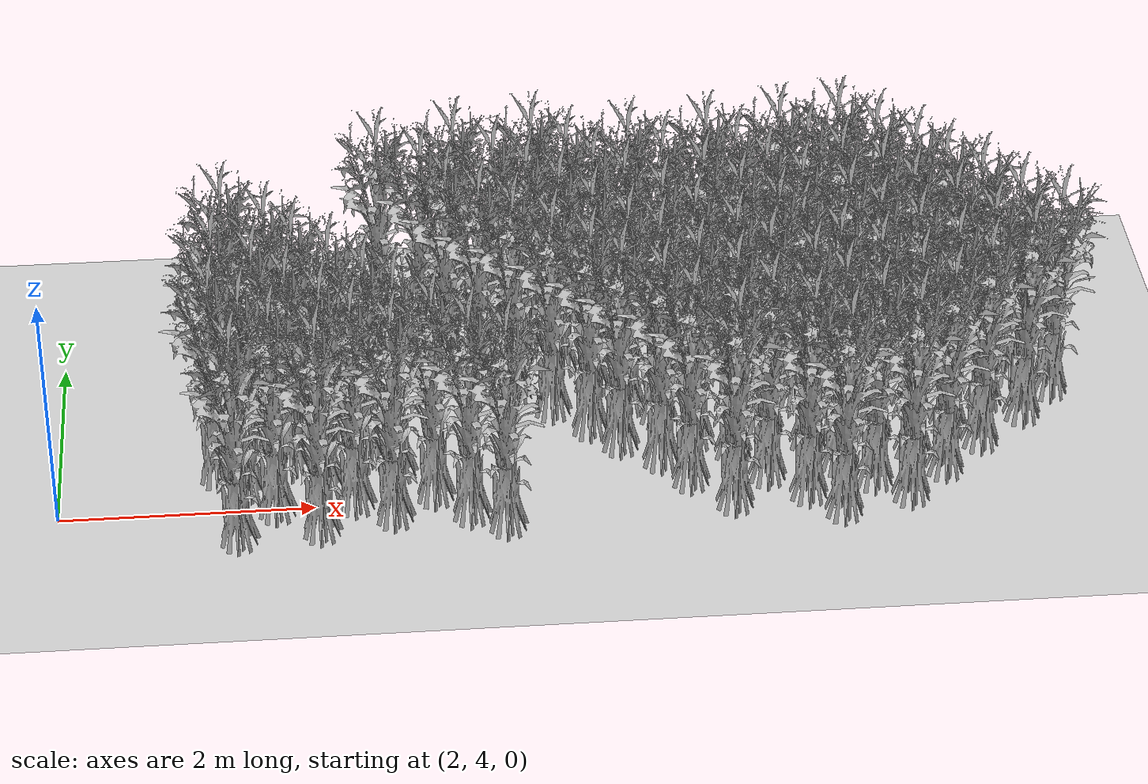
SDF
<sdf version="1.7">
 <world name="farmland_world">
  <model name="ground_plane">
   <static>1</static>
   <link name="link">
    <collision name="collision">
     <geometry><plane><normal>0 0 1</normal><size>40.0 40.0</size></plane></geometry>
     <surface><friction><ode><mu>100</mu><mu2>50</mu2></ode></friction></surface>
    </collision>
    <visual name="visual">
     <cast_shadows>0</cast_shadows>
     <geometry><plane><normal>0 0 1</normal><size>40.0 40.0</size></plane></geometry>
     <material>
      <script><uri>file://media/materials/scripts/gazebo.material</uri><name>Gazebo/Grey</name></script>
     </material>
    </visual>
   </link>
  </model>
  <model name="tree_2_50">
   <static>1</static>
   <link name="link">
    <collision name="collision">
     <geometry><mesh><uri>model://Corn/corn_5p.obj</uri><scale>1 1 1</scale></mesh></geometry>
     <surface><friction><ode><mu>100</mu><mu2>50</mu2></ode></friction></surface>
    </collision>
    <visual name="visual">
     <geometry><mesh><uri>model://Corn/corn_5p.obj</uri><scale>1 1 1</scale></mesh></geometry>
    </visual>
   </link>
   <pose>3.420444284650225 3.57358906782028 0 0 0 0</pose>
  </model>
  <model name="tree_2_86">
   <static>1</static>
   <link name="link">
    <collision name="collision">
     <geometry><mesh><uri>model://Corn/corn_5p.obj</uri><scale>1 1 1</scale></mesh></geometry>
     <surface><friction><ode><mu>100</mu><mu2>50</mu2></ode></friction></surface>
    </collision>
    <visual name="visual">
     <geometry><mesh><uri>model://Corn/corn_5p.obj</uri><scale>1 1 1</scale></mesh></geometry>
    </visual>
   </link>
   <pose>5.4896398008788445 3.5845369937580434 0 0 0 0</pose>
  </model>
  <model name="tree_2_87">
   <static>1</static>
   <link name="link">
    <collision name="collision">
     <geometry><mesh><uri>model://Corn/corn_5p.obj</uri><scale>1 1 1</scale></mesh></geometry>
     <surface><friction><ode><mu>100</mu><mu2>50</mu2></ode></friction></surface>
    </collision>
    <visual name="visual">
     <geometry><mesh><uri>model://Corn/corn_5p.obj</uri><scale>1 1 1</scale></mesh></geometry>
    </visual>
   </link>
   <pose>5.218135575923679 3.751085288662463 0 0 0 0</pose>
  </model>
  <model name="tree_2_88">
   <static>1</static>
   <link name="link">
    <collision name="collision">
     <geometry><mesh><uri>model://Corn/corn_5p.obj</uri><scale>1 1 1</scale></mesh></geometry>
     <surface><friction><ode><mu>100</mu><mu2>50</mu2></ode></friction></surface>
    </collision>
    <visual name="visual">
     <geometry><mesh><uri>model://Corn/corn_5p.obj</uri><scale>1 1 1</scale></mesh></geometry>
    </visual>
   </link>
   <pose>4.952018772519928 4.007155048597539 0 0 0 0</pose>
  </model>
  <model name="tree_2_89">
   <static>1</static>
   <link name="link">
    <collision name="collision">
     <geometry><mesh><uri>model://Corn/corn_5p.obj</uri><scale>1 1 1</scale></mesh></geometry>
     <surface><friction><ode><mu>100</mu><mu2>50</mu2></ode></friction></surface>
    </collision>
    <visual name="visual">
     <geometry><mesh><uri>model://Corn/corn_5p.obj</uri><scale>1 1 1</scale></mesh></geometry>
    </visual>
   </link>
   <pose>4.672133840282682 4.34394165432046 0 0 0 0</pose>
  </model>
  <model name="tree_2_90">
   <static>1</static>
   <link name="link">
    <collision name="collision">
     <geometry><mesh><uri>model://Corn/corn_5p.obj</uri><scale>1 1 1</scale></mesh></geometry>
     <surface><friction><ode><mu>100</mu><mu2>50</mu2></ode></friction></surface>
    </collision>
    <visual name="visual">
     <geometry><mesh><uri>model://Corn/corn_5p.obj</uri><scale>1 1 1</scale></mesh></geometry>
    </visual>
   </link>
   <pose>4.447115739398141 4.5255912613018205 0 0 0 0</pose>
  </model>
  <model name="tree_2_91">
   <static>1</static>
   <link name="link">
    <collision name="collision">
     <geometry><mesh><uri>model://Corn/corn_5p.obj</uri><scale>1 1 1</scale></mesh></geometry>
     <surface><friction><ode><mu>100</mu><mu2>50</mu2></ode></friction></surface>
    </collision>
    <visual name="visual">
     <geometry><mesh><uri>model://Corn/corn_5p.obj</uri><scale>1 1 1</scale></mesh></geometry>
    </visual>
   </link>
   <pose>4.186994604702957 4.819746124404386 0 0 0 0</pose>
  </model>
  <model name="tree_2_92">
   <static>1</static>
   <link name="link">
    <collision name="collision">
     <geometry><mesh><uri>model://Corn/corn_5p.obj</uri><scale>1 1 1</scale></mesh></geometry>
     <surface><friction><ode><mu>100</mu><mu2>50</mu2></ode></friction></surface>
    </collision>
    <visual name="visual">
     <geometry><mesh><uri>model://Corn/corn_5p.obj</uri><scale>1 1 1</scale></mesh></geometry>
    </visual>
   </link>
   <pose>3.9106659427075323 5.054535482924766 0 0 0 0</pose>
  </model>
  <model name="tree_2_93">
   <static>1</static>
   <link name="link">
    <collision name="collision">
     <geometry><mesh><uri>model://Corn/corn_5p.obj</uri><scale>1 1 1</scale></mesh></geometry>
     <surface><friction><ode><mu>100</mu><mu2>50</mu2></ode></friction></surface>
    </collision>
    <visual name="visual">
     <geometry><mesh><uri>model://Corn/corn_5p.obj</uri><scale>1 1 1</scale></mesh></geometry>
    </visual>
   </link>
   <pose>3.699629517159104 5.316806449366508 0 0 0 0</pose>
  </model>
  <model name="tree_2_94">
   <static>1</static>
   <link name="link">
    <collision name="collision">
     <geometry><mesh><uri>model://Corn/corn_5p.obj</uri><scale>1 1 1</scale></mesh></geometry>
     <surface><friction><ode><mu>100</mu><mu2>50</mu2></ode></friction></surface>
    </collision>
    <visual name="visual">
     <geometry><mesh><uri>model://Corn/corn_5p.obj</uri><scale>1 1 1</scale></mesh></geometry>
    </visual>
   </link>
   <pose>3.361128249426531 5.627001271178261 0 0 0 0</pose>
  </model>
  <model name="tree_2_123">
   <static>1</static>
   <link name="link">
    <collision name="collision">
     <geometry><mesh><uri>model://Corn/corn_5p.obj</uri><scale>1 1 1</scale></mesh></geometry>
     <surface><friction><ode><mu>100</mu><mu2>50</mu2></ode></friction></surface>
    </collision>
    <visual name="visual">
     <geometry><mesh><uri>model://Corn/corn_5p.obj</uri><scale>1 1 1</scale></mesh></geometry>
    </visual>
   </link>
   <pose>7.2709121314765985 3.72660483130917 0 0 0 0</pose>
  </model>
  <model name="tree_2_124">
   <static>1</static>
   <link name="link">
    <collision name="collision">
     <geometry><mesh><uri>model://Corn/corn_5p.obj</uri><scale>1 1 1</scale></mesh></geometry>
     <surface><friction><ode><mu>100</mu><mu2>50</mu2></ode></friction></surface>
    </collision>
    <visual name="visual">
     <geometry><mesh><uri>model://Corn/corn_5p.obj</uri><scale>1 1 1</scale></mesh></geometry>
    </visual>
   </link>
   <pose>6.957938753503712 4.039555844898377 0 0 0 0</pose>
  </model>
  <model name="tree_2_125">
   <static>1</static>
   <link name="link">
    <collision name="collision">
     <geometry><mesh><uri>model://Corn/corn_5p.obj</uri><scale>1 1 1</scale></mesh></geometry>
     <surface><friction><ode><mu>100</mu><mu2>50</mu2></ode></friction></surface>
    </collision>
    <visual name="visual">
     <geometry><mesh><uri>model://Corn/corn_5p.obj</uri><scale>1 1 1</scale></mesh></geometry>
    </visual>
   </link>
   <pose>6.753322616575584 4.316073762775237 0 0 0 0</pose>
  </model>
  <model name="tree_2_126">
   <static>1</static>
   <link name="link">
    <collision name="collision">
     <geometry><mesh><uri>model://Corn/corn_5p.obj</uri><scale>1 1 1</scale></mesh></geometry>
     <surface><friction><ode><mu>100</mu><mu2>50</mu2></ode></friction></surface>
    </collision>
    <visual name="visual">
     <geometry><mesh><uri>model://Corn/corn_5p.obj</uri><scale>1 1 1</scale></mesh></geometry>
    </visual>
   </link>
   <pose>6.450231007040186 4.551252220862419 0 0 0 0</pose>
  </model>
  <model name="tree_2_127">
   <static>1</static>
   <link name="link">
    <collision name="collision">
     <geometry><mesh><uri>model://Corn/corn_5p.obj</uri><scale>1 1 1</scale></mesh></geometry>
     <surface><friction><ode><mu>100</mu><mu2>50</mu2></ode></friction></surface>
    </collision>
    <visual name="visual">
     <geometry><mesh><uri>model://Corn/corn_5p.obj</uri><scale>1 1 1</scale></mesh></geometry>
    </visual>
   </link>
   <pose>6.231415448971569 4.7875504324229174 0 0 0 0</pose>
  </model>
  <model name="tree_2_128">
   <static>1</static>
   <link name="link">
    <collision name="collision">
     <geometry><mesh><uri>model://Corn/corn_5p.obj</uri><scale>1 1 1</scale></mesh></geometry>
     <surface><friction><ode><mu>100</mu><mu2>50</mu2></ode></friction></surface>
    </collision>
    <visual name="visual">
     <geometry><mesh><uri>model://Corn/corn_5p.obj</uri><scale>1 1 1</scale></mesh></geometry>
    </visual>
   </link>
   <pose>5.95136122695466 5.063842469284656 0 0 0 0</pose>
  </model>
  <model name="tree_2_129">
   <static>1</static>
   <link name="link">
    <collision name="collision">
     <geometry><mesh><uri>model://Corn/corn_5p.obj</uri><scale>1 1 1</scale></mesh></geometry>
     <surface><friction><ode><mu>100</mu><mu2>50</mu2></ode></friction></surface>
    </collision>
    <visual name="visual">
     <geometry><mesh><uri>model://Corn/corn_5p.obj</uri><scale>1 1 1</scale></mesh></geometry>
    </visual>
   </link>
   <pose>5.6586230795150785 5.319047655990866 0 0 0 0</pose>
  </model>
  <model name="tree_2_130">
   <static>1</static>
   <link name="link">
    <collision name="collision">
     <geometry><mesh><uri>model://Corn/corn_5p.obj</uri><scale>1 1 1</scale></mesh></geometry>
     <surface><friction><ode><mu>100</mu><mu2>50</mu2></ode></friction></surface>
    </collision>
    <visual name="visual">
     <geometry><mesh><uri>model://Corn/corn_5p.obj</uri><scale>1 1 1</scale></mesh></geometry>
    </visual>
   </link>
   <pose>5.402670767792569 5.519778649312421 0 0 0 0</pose>
  </model>
  <model name="tree_2_131">
   <static>1</static>
   <link name="link">
    <collision name="collision">
     <geometry><mesh><uri>model://Corn/corn_5p.obj</uri><scale>1 1 1</scale></mesh></geometry>
     <surface><friction><ode><mu>100</mu><mu2>50</mu2></ode></friction></surface>
    </collision>
    <visual name="visual">
     <geometry><mesh><uri>model://Corn/corn_5p.obj</uri><scale>1 1 1</scale></mesh></geometry>
    </visual>
   </link>
   <pose>5.152790353708562 5.783984192313626 0 0 0 0</pose>
  </model>
  <model name="tree_2_132">
   <static>1</static>
   <link name="link">
    <collision name="collision">
     <geometry><mesh><uri>model://Corn/corn_5p.obj</uri><scale>1 1 1</scale></mesh></geometry>
     <surface><friction><ode><mu>100</mu><mu2>50</mu2></ode></friction></surface>
    </collision>
    <visual name="visual">
     <geometry><mesh><uri>model://Corn/corn_5p.obj</uri><scale>1 1 1</scale></mesh></geometry>
    </visual>
   </link>
   <pose>4.966489439226466 6.08558600815118 0 0 0 0</pose>
  </model>
  <model name="tree_2_133">
   <static>1</static>
   <link name="link">
    <collision name="collision">
     <geometry><mesh><uri>model://Corn/corn_5p.obj</uri><scale>1 1 1</scale></mesh></geometry>
     <surface><friction><ode><mu>100</mu><mu2>50</mu2></ode></friction></surface>
    </collision>
    <visual name="visual">
     <geometry><mesh><uri>model://Corn/corn_5p.obj</uri><scale>1 1 1</scale></mesh></geometry>
    </visual>
   </link>
   <pose>4.622222130110102 6.330711594795093 0 0 0 0</pose>
  </model>
  <model name="tree_2_160">
   <static>1</static>
   <link name="link">
    <collision name="collision">
     <geometry><mesh><uri>model://Corn/corn_5p.obj</uri><scale>1 1 1</scale></mesh></geometry>
     <surface><friction><ode><mu>100</mu><mu2>50</mu2></ode></friction></surface>
    </collision>
    <visual name="visual">
     <geometry><mesh><uri>model://Corn/corn_5p.obj</uri><scale>1 1 1</scale></mesh></geometry>
    </visual>
   </link>
   <pose>8.971809798873332 4.0238394960927675 0 0 0 0</pose>
  </model>
  <model name="tree_2_161">
   <static>1</static>
   <link name="link">
    <collision name="collision">
     <geometry><mesh><uri>model://Corn/corn_5p.obj</uri><scale>1 1 1</scale></mesh></geometry>
     <surface><friction><ode><mu>100</mu><mu2>50</mu2></ode></friction></surface>
    </collision>
    <visual name="visual">
     <geometry><mesh><uri>model://Corn/corn_5p.obj</uri><scale>1 1 1</scale></mesh></geometry>
    </visual>
   </link>
   <pose>8.756607108072432 4.275760424871249 0 0 0 0</pose>
  </model>
  <model name="tree_2_162">
   <static>1</static>
   <link name="link">
    <collision name="collision">
     <geometry><mesh><uri>model://Corn/corn_5p.obj</uri><scale>1 1 1</scale></mesh></geometry>
     <surface><friction><ode><mu>100</mu><mu2>50</mu2></ode></friction></surface>
    </collision>
    <visual name="visual">
     <geometry><mesh><uri>model://Corn/corn_5p.obj</uri><scale>1 1 1</scale></mesh></geometry>
    </visual>
   </link>
   <pose>8.477014375566142 4.525477600243144 0 0 0 0</pose>
  </model>
  <model name="tree_2_163">
   <static>1</static>
   <link name="link">
    <collision name="collision">
     <geometry><mesh><uri>model://Corn/corn_5p.obj</uri><scale>1 1 1</scale></mesh></geometry>
     <surface><friction><ode><mu>100</mu><mu2>50</mu2></ode></friction></surface>
    </collision>
    <visual name="visual">
     <geometry><mesh><uri>model://Corn/corn_5p.obj</uri><scale>1 1 1</scale></mesh></geometry>
    </visual>
   </link>
   <pose>8.186990983842898 4.721249550850138 0 0 0 0</pose>
  </model>
  <model name="tree_2_164">
   <static>1</static>
   <link name="link">
    <collision name="collision">
     <geometry><mesh><uri>model://Corn/corn_5p.obj</uri><scale>1 1 1</scale></mesh></geometry>
     <surface><friction><ode><mu>100</mu><mu2>50</mu2></ode></friction></surface>
    </collision>
    <visual name="visual">
     <geometry><mesh><uri>model://Corn/corn_5p.obj</uri><scale>1 1 1</scale></mesh></geometry>
    </visual>
   </link>
   <pose>7.930127556334057 5.03850162180341 0 0 0 0</pose>
  </model>
  <model name="tree_2_165">
   <static>1</static>
   <link name="link">
    <collision name="collision">
     <geometry><mesh><uri>model://Corn/corn_5p.obj</uri><scale>1 1 1</scale></mesh></geometry>
     <surface><friction><ode><mu>100</mu><mu2>50</mu2></ode></friction></surface>
    </collision>
    <visual name="visual">
     <geometry><mesh><uri>model://Corn/corn_5p.obj</uri><scale>1 1 1</scale></mesh></geometry>
    </visual>
   </link>
   <pose>7.766700831403486 5.238220557831502 0 0 0 0</pose>
  </model>
  <model name="tree_2_166">
   <static>1</static>
   <link name="link">
    <collision name="collision">
     <geometry><mesh><uri>model://Corn/corn_5p.obj</uri><scale>1 1 1</scale></mesh></geometry>
     <surface><friction><ode><mu>100</mu><mu2>50</mu2></ode></friction></surface>
    </collision>
    <visual name="visual">
     <geometry><mesh><uri>model://Corn/corn_5p.obj</uri><scale>1 1 1</scale></mesh></geometry>
    </visual>
   </link>
   <pose>7.488185344527428 5.503619692228616 0 0 0 0</pose>
  </model>
  <model name="tree_2_167">
   <static>1</static>
   <link name="link">
    <collision name="collision">
     <geometry><mesh><uri>model://Corn/corn_5p.obj</uri><scale>1 1 1</scale></mesh></geometry>
     <surface><friction><ode><mu>100</mu><mu2>50</mu2></ode></friction></surface>
    </collision>
    <visual name="visual">
     <geometry><mesh><uri>model://Corn/corn_5p.obj</uri><scale>1 1 1</scale></mesh></geometry>
    </visual>
   </link>
   <pose>7.2301194894860865 5.815297586553065 0 0 0 0</pose>
  </model>
  <model name="tree_2_168">
   <static>1</static>
   <link name="link">
    <collision name="collision">
     <geometry><mesh><uri>model://Corn/corn_5p.obj</uri><scale>1 1 1</scale></mesh></geometry>
     <surface><friction><ode><mu>100</mu><mu2>50</mu2></ode></friction></surface>
    </collision>
    <visual name="visual">
     <geometry><mesh><uri>model://Corn/corn_5p.obj</uri><scale>1 1 1</scale></mesh></geometry>
    </visual>
   </link>
   <pose>6.923825650257247 6.100805399241911 0 0 0 0</pose>
  </model>
  <model name="tree_2_169">
   <static>1</static>
   <link name="link">
    <collision name="collision">
     <geometry><mesh><uri>model://Corn/corn_5p.obj</uri><scale>1 1 1</scale></mesh></geometry>
     <surface><friction><ode><mu>100</mu><mu2>50</mu2></ode></friction></surface>
    </collision>
    <visual name="visual">
     <geometry><mesh><uri>model://Corn/corn_5p.obj</uri><scale>1 1 1</scale></mesh></geometry>
    </visual>
   </link>
   <pose>6.666780380307193 6.338782024442576 0 0 0 0</pose>
  </model>
  <model name="tree_2_200">
   <static>1</static>
   <link name="link">
    <collision name="collision">
     <geometry><mesh><uri>model://Corn/corn_5p.obj</uri><scale>1 1 1</scale></mesh></geometry>
     <surface><friction><ode><mu>100</mu><mu2>50</mu2></ode></friction></surface>
    </collision>
    <visual name="visual">
     <geometry><mesh><uri>model://Corn/corn_5p.obj</uri><scale>1 1 1</scale></mesh></geometry>
    </visual>
   </link>
   <pose>9.992412318940376 5.019015286184299 0 0 0 0</pose>
  </model>
  <model name="tree_2_201">
   <static>1</static>
   <link name="link">
    <collision name="collision">
     <geometry><mesh><uri>model://Corn/corn_5p.obj</uri><scale>1 1 1</scale></mesh></geometry>
     <surface><friction><ode><mu>100</mu><mu2>50</mu2></ode></friction></surface>
    </collision>
    <visual name="visual">
     <geometry><mesh><uri>model://Corn/corn_5p.obj</uri><scale>1 1 1</scale></mesh></geometry>
    </visual>
   </link>
   <pose>9.695239798404423 5.234134339296995 0 0 0 0</pose>
  </model>
  <model name="tree_2_202">
   <static>1</static>
   <link name="link">
    <collision name="collision">
     <geometry><mesh><uri>model://Corn/corn_5p.obj</uri><scale>1 1 1</scale></mesh></geometry>
     <surface><friction><ode><mu>100</mu><mu2>50</mu2></ode></friction></surface>
    </collision>
    <visual name="visual">
     <geometry><mesh><uri>model://Corn/corn_5p.obj</uri><scale>1 1 1</scale></mesh></geometry>
    </visual>
   </link>
   <pose>9.438858503680304 5.545990520275801 0 0 0 0</pose>
  </model>
  <model name="tree_2_203">
   <static>1</static>
   <link name="link">
    <collision name="collision">
     <geometry><mesh><uri>model://Corn/corn_5p.obj</uri><scale>1 1 1</scale></mesh></geometry>
     <surface><friction><ode><mu>100</mu><mu2>50</mu2></ode></friction></surface>
    </collision>
    <visual name="visual">
     <geometry><mesh><uri>model://Corn/corn_5p.obj</uri><scale>1 1 1</scale></mesh></geometry>
    </visual>
   </link>
   <pose>9.1883919086013 5.779857916723755 0 0 0 0</pose>
  </model>
  <model name="tree_2_204">
   <static>1</static>
   <link name="link">
    <collision name="collision">
     <geometry><mesh><uri>model://Corn/corn_5p.obj</uri><scale>1 1 1</scale></mesh></geometry>
     <surface><friction><ode><mu>100</mu><mu2>50</mu2></ode></friction></surface>
    </collision>
    <visual name="visual">
     <geometry><mesh><uri>model://Corn/corn_5p.obj</uri><scale>1 1 1</scale></mesh></geometry>
    </visual>
   </link>
   <pose>8.974354229650265 5.999139149945955 0 0 0 0</pose>
  </model>
  <model name="tree_2_205">
   <static>1</static>
   <link name="link">
    <collision name="collision">
     <geometry><mesh><uri>model://Corn/corn_5p.obj</uri><scale>1 1 1</scale></mesh></geometry>
     <surface><friction><ode><mu>100</mu><mu2>50</mu2></ode></friction></surface>
    </collision>
    <visual name="visual">
     <geometry><mesh><uri>model://Corn/corn_5p.obj</uri><scale>1 1 1</scale></mesh></geometry>
    </visual>
   </link>
   <pose>8.698085413904012 6.282540089815209 0 0 0 0</pose>
  </model>
  <model name="tree_2_206">
   <static>1</static>
   <link name="link">
    <collision name="collision">
     <geometry><mesh><uri>model://Corn/corn_5p.obj</uri><scale>1 1 1</scale></mesh></geometry>
     <surface><friction><ode><mu>100</mu><mu2>50</mu2></ode></friction></surface>
    </collision>
    <visual name="visual">
     <geometry><mesh><uri>model://Corn/corn_5p.obj</uri><scale>1 1 1</scale></mesh></geometry>
    </visual>
   </link>
   <pose>8.418755363700813 6.530436253833142 0 0 0 0</pose>
  </model>
  <model name="tree_2_329">
   <static>1</static>
   <link name="link">
    <collision name="collision">
     <geometry><mesh><uri>model://Corn/corn_5p.obj</uri><scale>1 1 1</scale></mesh></geometry>
     <surface><friction><ode><mu>100</mu><mu2>50</mu2></ode></friction></surface>
    </collision>
    <visual name="visual">
     <geometry><mesh><uri>model://Corn/corn_5p.obj</uri><scale>1 1 1</scale></mesh></geometry>
    </visual>
   </link>
   <pose>4.056673950762567 3.626331112876037 0 0 0 0</pose>
  </model>
  <model name="tree_2_330">
   <static>1</static>
   <link name="link">
    <collision name="collision">
     <geometry><mesh><uri>model://Corn/corn_5p.obj</uri><scale>1 1 1</scale></mesh></geometry>
     <surface><friction><ode><mu>100</mu><mu2>50</mu2></ode></friction></surface>
    </collision>
    <visual name="visual">
     <geometry><mesh><uri>model://Corn/corn_5p.obj</uri><scale>1 1 1</scale></mesh></geometry>
    </visual>
   </link>
   <pose>3.7175955810569628 3.9066395286522253 0 0 0 0</pose>
  </model>
  <model name="tree_2_331">
   <static>1</static>
   <link name="link">
    <collision name="collision">
     <geometry><mesh><uri>model://Corn/corn_5p.obj</uri><scale>1 1 1</scale></mesh></geometry>
     <surface><friction><ode><mu>100</mu><mu2>50</mu2></ode></friction></surface>
    </collision>
    <visual name="visual">
     <geometry><mesh><uri>model://Corn/corn_5p.obj</uri><scale>1 1 1</scale></mesh></geometry>
    </visual>
   </link>
   <pose>3.4928285086635613 4.15135750337014 0 0 0 0</pose>
  </model>
  <model name="tree_2_332">
   <static>1</static>
   <link name="link">
    <collision name="collision">
     <geometry><mesh><uri>model://Corn/corn_5p.obj</uri><scale>1 1 1</scale></mesh></geometry>
     <surface><friction><ode><mu>100</mu><mu2>50</mu2></ode></friction></surface>
    </collision>
    <visual name="visual">
     <geometry><mesh><uri>model://Corn/corn_5p.obj</uri><scale>1 1 1</scale></mesh></geometry>
    </visual>
   </link>
   <pose>3.2642233413673556 4.389356455322433 0 0 0 0</pose>
  </model>
  <model name="tree_2_368">
   <static>1</static>
   <link name="link">
    <collision name="collision">
     <geometry><mesh><uri>model://Corn/corn_5p.obj</uri><scale>1 1 1</scale></mesh></geometry>
     <surface><friction><ode><mu>100</mu><mu2>50</mu2></ode></friction></surface>
    </collision>
    <visual name="visual">
     <geometry><mesh><uri>model://Corn/corn_5p.obj</uri><scale>1 1 1</scale></mesh></geometry>
    </visual>
   </link>
   <pose>4.627120669014683 3.7546404285398736 0 0 0 0</pose>
  </model>
  <model name="tree_2_369">
   <static>1</static>
   <link name="link">
    <collision name="collision">
     <geometry><mesh><uri>model://Corn/corn_5p.obj</uri><scale>1 1 1</scale></mesh></geometry>
     <surface><friction><ode><mu>100</mu><mu2>50</mu2></ode></friction></surface>
    </collision>
    <visual name="visual">
     <geometry><mesh><uri>model://Corn/corn_5p.obj</uri><scale>1 1 1</scale></mesh></geometry>
    </visual>
   </link>
   <pose>4.331854117210379 3.9492328593142787 0 0 0 0</pose>
  </model>
  <model name="tree_2_370">
   <static>1</static>
   <link name="link">
    <collision name="collision">
     <geometry><mesh><uri>model://Corn/corn_5p.obj</uri><scale>1 1 1</scale></mesh></geometry>
     <surface><friction><ode><mu>100</mu><mu2>50</mu2></ode></friction></surface>
    </collision>
    <visual name="visual">
     <geometry><mesh><uri>model://Corn/corn_5p.obj</uri><scale>1 1 1</scale></mesh></geometry>
    </visual>
   </link>
   <pose>4.107755611445949 4.195568005402644 0 0 0 0</pose>
  </model>
  <model name="tree_2_371">
   <static>1</static>
   <link name="link">
    <collision name="collision">
     <geometry><mesh><uri>model://Corn/corn_5p.obj</uri><scale>1 1 1</scale></mesh></geometry>
     <surface><friction><ode><mu>100</mu><mu2>50</mu2></ode></friction></surface>
    </collision>
    <visual name="visual">
     <geometry><mesh><uri>model://Corn/corn_5p.obj</uri><scale>1 1 1</scale></mesh></geometry>
    </visual>
   </link>
   <pose>3.8484437805076097 4.457998531699208 0 0 0 0</pose>
  </model>
  <model name="tree_2_372">
   <static>1</static>
   <link name="link">
    <collision name="collision">
     <geometry><mesh><uri>model://Corn/corn_5p.obj</uri><scale>1 1 1</scale></mesh></geometry>
     <surface><friction><ode><mu>100</mu><mu2>50</mu2></ode></friction></surface>
    </collision>
    <visual name="visual">
     <geometry><mesh><uri>model://Corn/corn_5p.obj</uri><scale>1 1 1</scale></mesh></geometry>
    </visual>
   </link>
   <pose>3.598163309161487 4.777851357387605 0 0 0 0</pose>
  </model>
  <model name="tree_2_373">
   <static>1</static>
   <link name="link">
    <collision name="collision">
     <geometry><mesh><uri>model://Corn/corn_5p.obj</uri><scale>1 1 1</scale></mesh></geometry>
     <surface><friction><ode><mu>100</mu><mu2>50</mu2></ode></friction></surface>
    </collision>
    <visual name="visual">
     <geometry><mesh><uri>model://Corn/corn_5p.obj</uri><scale>1 1 1</scale></mesh></geometry>
    </visual>
   </link>
   <pose>3.287224553685607 5.0286822418512385 0 0 0 0</pose>
  </model>
  <model name="tree_2_401">
   <static>1</static>
   <link name="link">
    <collision name="collision">
     <geometry><mesh><uri>model://Corn/corn_5p.obj</uri><scale>1 1 1</scale></mesh></geometry>
     <surface><friction><ode><mu>100</mu><mu2>50</mu2></ode></friction></surface>
    </collision>
    <visual name="visual">
     <geometry><mesh><uri>model://Corn/corn_5p.obj</uri><scale>1 1 1</scale></mesh></geometry>
    </visual>
   </link>
   <pose>8.104762726956801 3.553470214592335 0 0 0 0</pose>
  </model>
  <model name="tree_2_402">
   <static>1</static>
   <link name="link">
    <collision name="collision">
     <geometry><mesh><uri>model://Corn/corn_5p.obj</uri><scale>1 1 1</scale></mesh></geometry>
     <surface><friction><ode><mu>100</mu><mu2>50</mu2></ode></friction></surface>
    </collision>
    <visual name="visual">
     <geometry><mesh><uri>model://Corn/corn_5p.obj</uri><scale>1 1 1</scale></mesh></geometry>
    </visual>
   </link>
   <pose>7.858654989671486 3.7963951765867097 0 0 0 0</pose>
  </model>
  <model name="tree_2_403">
   <static>1</static>
   <link name="link">
    <collision name="collision">
     <geometry><mesh><uri>model://Corn/corn_5p.obj</uri><scale>1 1 1</scale></mesh></geometry>
     <surface><friction><ode><mu>100</mu><mu2>50</mu2></ode></friction></surface>
    </collision>
    <visual name="visual">
     <geometry><mesh><uri>model://Corn/corn_5p.obj</uri><scale>1 1 1</scale></mesh></geometry>
    </visual>
   </link>
   <pose>7.565798287189242 4.051856385478222 0 0 0 0</pose>
  </model>
  <model name="tree_2_404">
   <static>1</static>
   <link name="link">
    <collision name="collision">
     <geometry><mesh><uri>model://Corn/corn_5p.obj</uri><scale>1 1 1</scale></mesh></geometry>
     <surface><friction><ode><mu>100</mu><mu2>50</mu2></ode></friction></surface>
    </collision>
    <visual name="visual">
     <geometry><mesh><uri>model://Corn/corn_5p.obj</uri><scale>1 1 1</scale></mesh></geometry>
    </visual>
   </link>
   <pose>7.33225017087663 4.376349220651819 0 0 0 0</pose>
  </model>
  <model name="tree_2_405">
   <static>1</static>
   <link name="link">
    <collision name="collision">
     <geometry><mesh><uri>model://Corn/corn_5p.obj</uri><scale>1 1 1</scale></mesh></geometry>
     <surface><friction><ode><mu>100</mu><mu2>50</mu2></ode></friction></surface>
    </collision>
    <visual name="visual">
     <geometry><mesh><uri>model://Corn/corn_5p.obj</uri><scale>1 1 1</scale></mesh></geometry>
    </visual>
   </link>
   <pose>7.0509955984774315 4.577070899272066 0 0 0 0</pose>
  </model>
  <model name="tree_2_406">
   <static>1</static>
   <link name="link">
    <collision name="collision">
     <geometry><mesh><uri>model://Corn/corn_5p.obj</uri><scale>1 1 1</scale></mesh></geometry>
     <surface><friction><ode><mu>100</mu><mu2>50</mu2></ode></friction></surface>
    </collision>
    <visual name="visual">
     <geometry><mesh><uri>model://Corn/corn_5p.obj</uri><scale>1 1 1</scale></mesh></geometry>
    </visual>
   </link>
   <pose>6.785148104481873 4.900773455353288 0 0 0 0</pose>
  </model>
  <model name="tree_2_407">
   <static>1</static>
   <link name="link">
    <collision name="collision">
     <geometry><mesh><uri>model://Corn/corn_5p.obj</uri><scale>1 1 1</scale></mesh></geometry>
     <surface><friction><ode><mu>100</mu><mu2>50</mu2></ode></friction></surface>
    </collision>
    <visual name="visual">
     <geometry><mesh><uri>model://Corn/corn_5p.obj</uri><scale>1 1 1</scale></mesh></geometry>
    </visual>
   </link>
   <pose>6.552309837278342 5.08215238199698 0 0 0 0</pose>
  </model>
  <model name="tree_2_408">
   <static>1</static>
   <link name="link">
    <collision name="collision">
     <geometry><mesh><uri>model://Corn/corn_5p.obj</uri><scale>1 1 1</scale></mesh></geometry>
     <surface><friction><ode><mu>100</mu><mu2>50</mu2></ode></friction></surface>
    </collision>
    <visual name="visual">
     <geometry><mesh><uri>model://Corn/corn_5p.obj</uri><scale>1 1 1</scale></mesh></geometry>
    </visual>
   </link>
   <pose>6.29579610683235 5.383892695542541 0 0 0 0</pose>
  </model>
  <model name="tree_2_409">
   <static>1</static>
   <link name="link">
    <collision name="collision">
     <geometry><mesh><uri>model://Corn/corn_5p.obj</uri><scale>1 1 1</scale></mesh></geometry>
     <surface><friction><ode><mu>100</mu><mu2>50</mu2></ode></friction></surface>
    </collision>
    <visual name="visual">
     <geometry><mesh><uri>model://Corn/corn_5p.obj</uri><scale>1 1 1</scale></mesh></geometry>
    </visual>
   </link>
   <pose>6.05408661349099 5.674130844001837 0 0 0 0</pose>
  </model>
  <model name="tree_2_410">
   <static>1</static>
   <link name="link">
    <collision name="collision">
     <geometry><mesh><uri>model://Corn/corn_5p.obj</uri><scale>1 1 1</scale></mesh></geometry>
     <surface><friction><ode><mu>100</mu><mu2>50</mu2></ode></friction></surface>
    </collision>
    <visual name="visual">
     <geometry><mesh><uri>model://Corn/corn_5p.obj</uri><scale>1 1 1</scale></mesh></geometry>
    </visual>
   </link>
   <pose>5.809107170141438 5.913042301155889 0 0 0 0</pose>
  </model>
  <model name="tree_2_411">
   <static>1</static>
   <link name="link">
    <collision name="collision">
     <geometry><mesh><uri>model://Corn/corn_5p.obj</uri><scale>1 1 1</scale></mesh></geometry>
     <surface><friction><ode><mu>100</mu><mu2>50</mu2></ode></friction></surface>
    </collision>
    <visual name="visual">
     <geometry><mesh><uri>model://Corn/corn_5p.obj</uri><scale>1 1 1</scale></mesh></geometry>
    </visual>
   </link>
   <pose>5.557039114843614 6.153382146268916 0 0 0 0</pose>
  </model>
  <model name="tree_2_412">
   <static>1</static>
   <link name="link">
    <collision name="collision">
     <geometry><mesh><uri>model://Corn/corn_5p.obj</uri><scale>1 1 1</scale></mesh></geometry>
     <surface><friction><ode><mu>100</mu><mu2>50</mu2></ode></friction></surface>
    </collision>
    <visual name="visual">
     <geometry><mesh><uri>model://Corn/corn_5p.obj</uri><scale>1 1 1</scale></mesh></geometry>
    </visual>
   </link>
   <pose>5.247603933629031 6.449455039946461 0 0 0 0</pose>
  </model>
  <model name="tree_2_440">
   <static>1</static>
   <link name="link">
    <collision name="collision">
     <geometry><mesh><uri>model://Corn/corn_5p.obj</uri><scale>1 1 1</scale></mesh></geometry>
     <surface><friction><ode><mu>100</mu><mu2>50</mu2></ode></friction></surface>
    </collision>
    <visual name="visual">
     <geometry><mesh><uri>model://Corn/corn_5p.obj</uri><scale>1 1 1</scale></mesh></geometry>
    </visual>
   </link>
   <pose>8.653564278269261 3.709383996154451 0 0 0 0</pose>
  </model>
  <model name="tree_2_441">
   <static>1</static>
   <link name="link">
    <collision name="collision">
     <geometry><mesh><uri>model://Corn/corn_5p.obj</uri><scale>1 1 1</scale></mesh></geometry>
     <surface><friction><ode><mu>100</mu><mu2>50</mu2></ode></friction></surface>
    </collision>
    <visual name="visual">
     <geometry><mesh><uri>model://Corn/corn_5p.obj</uri><scale>1 1 1</scale></mesh></geometry>
    </visual>
   </link>
   <pose>8.395589081063225 3.9232881416828422 0 0 0 0</pose>
  </model>
  <model name="tree_2_442">
   <static>1</static>
   <link name="link">
    <collision name="collision">
     <geometry><mesh><uri>model://Corn/corn_5p.obj</uri><scale>1 1 1</scale></mesh></geometry>
     <surface><friction><ode><mu>100</mu><mu2>50</mu2></ode></friction></surface>
    </collision>
    <visual name="visual">
     <geometry><mesh><uri>model://Corn/corn_5p.obj</uri><scale>1 1 1</scale></mesh></geometry>
    </visual>
   </link>
   <pose>8.148305062381299 4.150530660091161 0 0 0 0</pose>
  </model>
  <model name="tree_2_443">
   <static>1</static>
   <link name="link">
    <collision name="collision">
     <geometry><mesh><uri>model://Corn/corn_5p.obj</uri><scale>1 1 1</scale></mesh></geometry>
     <surface><friction><ode><mu>100</mu><mu2>50</mu2></ode></friction></surface>
    </collision>
    <visual name="visual">
     <geometry><mesh><uri>model://Corn/corn_5p.obj</uri><scale>1 1 1</scale></mesh></geometry>
    </visual>
   </link>
   <pose>7.94316513915934 4.456256077021537 0 0 0 0</pose>
  </model>
  <model name="tree_2_444">
   <static>1</static>
   <link name="link">
    <collision name="collision">
     <geometry><mesh><uri>model://Corn/corn_5p.obj</uri><scale>1 1 1</scale></mesh></geometry>
     <surface><friction><ode><mu>100</mu><mu2>50</mu2></ode></friction></surface>
    </collision>
    <visual name="visual">
     <geometry><mesh><uri>model://Corn/corn_5p.obj</uri><scale>1 1 1</scale></mesh></geometry>
    </visual>
   </link>
   <pose>7.624011869230044 4.669519874640418 0 0 0 0</pose>
  </model>
  <model name="tree_2_445">
   <static>1</static>
   <link name="link">
    <collision name="collision">
     <geometry><mesh><uri>model://Corn/corn_5p.obj</uri><scale>1 1 1</scale></mesh></geometry>
     <surface><friction><ode><mu>100</mu><mu2>50</mu2></ode></friction></surface>
    </collision>
    <visual name="visual">
     <geometry><mesh><uri>model://Corn/corn_5p.obj</uri><scale>1 1 1</scale></mesh></geometry>
    </visual>
   </link>
   <pose>7.393718341215377 4.921467651824212 0 0 0 0</pose>
  </model>
  <model name="tree_2_446">
   <static>1</static>
   <link name="link">
    <collision name="collision">
     <geometry><mesh><uri>model://Corn/corn_5p.obj</uri><scale>1 1 1</scale></mesh></geometry>
     <surface><friction><ode><mu>100</mu><mu2>50</mu2></ode></friction></surface>
    </collision>
    <visual name="visual">
     <geometry><mesh><uri>model://Corn/corn_5p.obj</uri><scale>1 1 1</scale></mesh></geometry>
    </visual>
   </link>
   <pose>7.0937358702708435 5.1978108572030735 0 0 0 0</pose>
  </model>
  <model name="tree_2_447">
   <static>1</static>
   <link name="link">
    <collision name="collision">
     <geometry><mesh><uri>model://Corn/corn_5p.obj</uri><scale>1 1 1</scale></mesh></geometry>
     <surface><friction><ode><mu>100</mu><mu2>50</mu2></ode></friction></surface>
    </collision>
    <visual name="visual">
     <geometry><mesh><uri>model://Corn/corn_5p.obj</uri><scale>1 1 1</scale></mesh></geometry>
    </visual>
   </link>
   <pose>6.863022278775 5.471605493597064 0 0 0 0</pose>
  </model>
  <model name="tree_2_448">
   <static>1</static>
   <link name="link">
    <collision name="collision">
     <geometry><mesh><uri>model://Corn/corn_5p.obj</uri><scale>1 1 1</scale></mesh></geometry>
     <surface><friction><ode><mu>100</mu><mu2>50</mu2></ode></friction></surface>
    </collision>
    <visual name="visual">
     <geometry><mesh><uri>model://Corn/corn_5p.obj</uri><scale>1 1 1</scale></mesh></geometry>
    </visual>
   </link>
   <pose>6.584761133831643 5.758435905557862 0 0 0 0</pose>
  </model>
  <model name="tree_2_449">
   <static>1</static>
   <link name="link">
    <collision name="collision">
     <geometry><mesh><uri>model://Corn/corn_5p.obj</uri><scale>1 1 1</scale></mesh></geometry>
     <surface><friction><ode><mu>100</mu><mu2>50</mu2></ode></friction></surface>
    </collision>
    <visual name="visual">
     <geometry><mesh><uri>model://Corn/corn_5p.obj</uri><scale>1 1 1</scale></mesh></geometry>
    </visual>
   </link>
   <pose>6.356448243982241 5.997237111146895 0 0 0 0</pose>
  </model>
  <model name="tree_2_450">
   <static>1</static>
   <link name="link">
    <collision name="collision">
     <geometry><mesh><uri>model://Corn/corn_5p.obj</uri><scale>1 1 1</scale></mesh></geometry>
     <surface><friction><ode><mu>100</mu><mu2>50</mu2></ode></friction></surface>
    </collision>
    <visual name="visual">
     <geometry><mesh><uri>model://Corn/corn_5p.obj</uri><scale>1 1 1</scale></mesh></geometry>
    </visual>
   </link>
   <pose>6.152121929064736 6.239642621819321 0 0 0 0</pose>
  </model>
  <model name="tree_2_451">
   <static>1</static>
   <link name="link">
    <collision name="collision">
     <geometry><mesh><uri>model://Corn/corn_5p.obj</uri><scale>1 1 1</scale></mesh></geometry>
     <surface><friction><ode><mu>100</mu><mu2>50</mu2></ode></friction></surface>
    </collision>
    <visual name="visual">
     <geometry><mesh><uri>model://Corn/corn_5p.obj</uri><scale>1 1 1</scale></mesh></geometry>
    </visual>
   </link>
   <pose>5.888894118478287 6.496317878223188 0 0 0 0</pose>
  </model>
  <model name="tree_2_480">
   <static>1</static>
   <link name="link">
    <collision name="collision">
     <geometry><mesh><uri>model://Corn/corn_5p.obj</uri><scale>1 1 1</scale></mesh></geometry>
     <surface><friction><ode><mu>100</mu><mu2>50</mu2></ode></friction></surface>
    </collision>
    <visual name="visual">
     <geometry><mesh><uri>model://Corn/corn_5p.obj</uri><scale>1 1 1</scale></mesh></geometry>
    </visual>
   </link>
   <pose>9.310778509907893 4.362832998707155 0 0 0 0</pose>
  </model>
  <model name="tree_2_481">
   <static>1</static>
   <link name="link">
    <collision name="collision">
     <geometry><mesh><uri>model://Corn/corn_5p.obj</uri><scale>1 1 1</scale></mesh></geometry>
     <surface><friction><ode><mu>100</mu><mu2>50</mu2></ode></friction></surface>
    </collision>
    <visual name="visual">
     <geometry><mesh><uri>model://Corn/corn_5p.obj</uri><scale>1 1 1</scale></mesh></geometry>
    </visual>
   </link>
   <pose>9.095485497714371 4.59039162267124 0 0 0 0</pose>
  </model>
  <model name="tree_2_482">
   <static>1</static>
   <link name="link">
    <collision name="collision">
     <geometry><mesh><uri>model://Corn/corn_5p.obj</uri><scale>1 1 1</scale></mesh></geometry>
     <surface><friction><ode><mu>100</mu><mu2>50</mu2></ode></friction></surface>
    </collision>
    <visual name="visual">
     <geometry><mesh><uri>model://Corn/corn_5p.obj</uri><scale>1 1 1</scale></mesh></geometry>
    </visual>
   </link>
   <pose>8.830573075743732 4.865461931057808 0 0 0 0</pose>
  </model>
  <model name="tree_2_483">
   <static>1</static>
   <link name="link">
    <collision name="collision">
     <geometry><mesh><uri>model://Corn/corn_5p.obj</uri><scale>1 1 1</scale></mesh></geometry>
     <surface><friction><ode><mu>100</mu><mu2>50</mu2></ode></friction></surface>
    </collision>
    <visual name="visual">
     <geometry><mesh><uri>model://Corn/corn_5p.obj</uri><scale>1 1 1</scale></mesh></geometry>
    </visual>
   </link>
   <pose>8.552664367051616 5.062520754975004 0 0 0 0</pose>
  </model>
  <model name="tree_2_484">
   <static>1</static>
   <link name="link">
    <collision name="collision">
     <geometry><mesh><uri>model://Corn/corn_5p.obj</uri><scale>1 1 1</scale></mesh></geometry>
     <surface><friction><ode><mu>100</mu><mu2>50</mu2></ode></friction></surface>
    </collision>
    <visual name="visual">
     <geometry><mesh><uri>model://Corn/corn_5p.obj</uri><scale>1 1 1</scale></mesh></geometry>
    </visual>
   </link>
   <pose>8.34982859291238 5.36228501331963 0 0 0 0</pose>
  </model>
  <model name="tree_2_485">
   <static>1</static>
   <link name="link">
    <collision name="collision">
     <geometry><mesh><uri>model://Corn/corn_5p.obj</uri><scale>1 1 1</scale></mesh></geometry>
     <surface><friction><ode><mu>100</mu><mu2>50</mu2></ode></friction></surface>
    </collision>
    <visual name="visual">
     <geometry><mesh><uri>model://Corn/corn_5p.obj</uri><scale>1 1 1</scale></mesh></geometry>
    </visual>
   </link>
   <pose>8.001630815431717 5.6043397248612115 0 0 0 0</pose>
  </model>
  <model name="tree_2_486">
   <static>1</static>
   <link name="link">
    <collision name="collision">
     <geometry><mesh><uri>model://Corn/corn_5p.obj</uri><scale>1 1 1</scale></mesh></geometry>
     <surface><friction><ode><mu>100</mu><mu2>50</mu2></ode></friction></surface>
    </collision>
    <visual name="visual">
     <geometry><mesh><uri>model://Corn/corn_5p.obj</uri><scale>1 1 1</scale></mesh></geometry>
    </visual>
   </link>
   <pose>7.743837026637257 5.856519532546949 0 0 0 0</pose>
  </model>
  <model name="tree_2_487">
   <static>1</static>
   <link name="link">
    <collision name="collision">
     <geometry><mesh><uri>model://Corn/corn_5p.obj</uri><scale>1 1 1</scale></mesh></geometry>
     <surface><friction><ode><mu>100</mu><mu2>50</mu2></ode></friction></surface>
    </collision>
    <visual name="visual">
     <geometry><mesh><uri>model://Corn/corn_5p.obj</uri><scale>1 1 1</scale></mesh></geometry>
    </visual>
   </link>
   <pose>7.52608508805837 6.136424845490668 0 0 0 0</pose>
  </model>
  <model name="tree_2_488">
   <static>1</static>
   <link name="link">
    <collision name="collision">
     <geometry><mesh><uri>model://Corn/corn_5p.obj</uri><scale>1 1 1</scale></mesh></geometry>
     <surface><friction><ode><mu>100</mu><mu2>50</mu2></ode></friction></surface>
    </collision>
    <visual name="visual">
     <geometry><mesh><uri>model://Corn/corn_5p.obj</uri><scale>1 1 1</scale></mesh></geometry>
    </visual>
   </link>
   <pose>7.307334594172641 6.377227291149095 0 0 0 0</pose>
  </model>
  <model name="tree_2_520">
   <static>1</static>
   <link name="link">
    <collision name="collision">
     <geometry><mesh><uri>model://Corn/corn_5p.obj</uri><scale>1 1 1</scale></mesh></geometry>
     <surface><friction><ode><mu>100</mu><mu2>50</mu2></ode></friction></surface>
    </collision>
    <visual name="visual">
     <geometry><mesh><uri>model://Corn/corn_5p.obj</uri><scale>1 1 1</scale></mesh></geometry>
    </visual>
   </link>
   <pose>9.710522940887515 4.699411885006218 0 0 0 0</pose>
  </model>
  <model name="tree_2_521">
   <static>1</static>
   <link name="link">
    <collision name="collision">
     <geometry><mesh><uri>model://Corn/corn_5p.obj</uri><scale>1 1 1</scale></mesh></geometry>
     <surface><friction><ode><mu>100</mu><mu2>50</mu2></ode></friction></surface>
    </collision>
    <visual name="visual">
     <geometry><mesh><uri>model://Corn/corn_5p.obj</uri><scale>1 1 1</scale></mesh></geometry>
    </visual>
   </link>
   <pose>9.437289161099326 4.899977065762031 0 0 0 0</pose>
  </model>
  <model name="tree_2_522">
   <static>1</static>
   <link name="link">
    <collision name="collision">
     <geometry><mesh><uri>model://Corn/corn_5p.obj</uri><scale>1 1 1</scale></mesh></geometry>
     <surface><friction><ode><mu>100</mu><mu2>50</mu2></ode></friction></surface>
    </collision>
    <visual name="visual">
     <geometry><mesh><uri>model://Corn/corn_5p.obj</uri><scale>1 1 1</scale></mesh></geometry>
    </visual>
   </link>
   <pose>9.179025367668235 5.221882940135049 0 0 0 0</pose>
  </model>
  <model name="tree_2_523">
   <static>1</static>
   <link name="link">
    <collision name="collision">
     <geometry><mesh><uri>model://Corn/corn_5p.obj</uri><scale>1 1 1</scale></mesh></geometry>
     <surface><friction><ode><mu>100</mu><mu2>50</mu2></ode></friction></surface>
    </collision>
    <visual name="visual">
     <geometry><mesh><uri>model://Corn/corn_5p.obj</uri><scale>1 1 1</scale></mesh></geometry>
    </visual>
   </link>
   <pose>8.877977325173292 5.445242842114278 0 0 0 0</pose>
  </model>
  <model name="tree_2_524">
   <static>1</static>
   <link name="link">
    <collision name="collision">
     <geometry><mesh><uri>model://Corn/corn_5p.obj</uri><scale>1 1 1</scale></mesh></geometry>
     <surface><friction><ode><mu>100</mu><mu2>50</mu2></ode></friction></surface>
    </collision>
    <visual name="visual">
     <geometry><mesh><uri>model://Corn/corn_5p.obj</uri><scale>1 1 1</scale></mesh></geometry>
    </visual>
   </link>
   <pose>8.667850166330556 5.739736824284293 0 0 0 0</pose>
  </model>
  <model name="tree_2_525">
   <static>1</static>
   <link name="link">
    <collision name="collision">
     <geometry><mesh><uri>model://Corn/corn_5p.obj</uri><scale>1 1 1</scale></mesh></geometry>
     <surface><friction><ode><mu>100</mu><mu2>50</mu2></ode></friction></surface>
    </collision>
    <visual name="visual">
     <geometry><mesh><uri>model://Corn/corn_5p.obj</uri><scale>1 1 1</scale></mesh></geometry>
    </visual>
   </link>
   <pose>8.365095447785361 5.919473321693237 0 0 0 0</pose>
  </model>
  <model name="tree_2_526">
   <static>1</static>
   <link name="link">
    <collision name="collision">
     <geometry><mesh><uri>model://Corn/corn_5p.obj</uri><scale>1 1 1</scale></mesh></geometry>
     <surface><friction><ode><mu>100</mu><mu2>50</mu2></ode></friction></surface>
    </collision>
    <visual name="visual">
     <geometry><mesh><uri>model://Corn/corn_5p.obj</uri><scale>1 1 1</scale></mesh></geometry>
    </visual>
   </link>
   <pose>8.122472657724419 6.201015387256918 0 0 0 0</pose>
  </model>
  <model name="tree_2_527">
   <static>1</static>
   <link name="link">
    <collision name="collision">
     <geometry><mesh><uri>model://Corn/corn_5p.obj</uri><scale>1 1 1</scale></mesh></geometry>
     <surface><friction><ode><mu>100</mu><mu2>50</mu2></ode></friction></surface>
    </collision>
    <visual name="visual">
     <geometry><mesh><uri>model://Corn/corn_5p.obj</uri><scale>1 1 1</scale></mesh></geometry>
    </visual>
   </link>
   <pose>7.919970947973672 6.446883910530175 0 0 0 0</pose>
  </model>
 </world>
</sdf>
